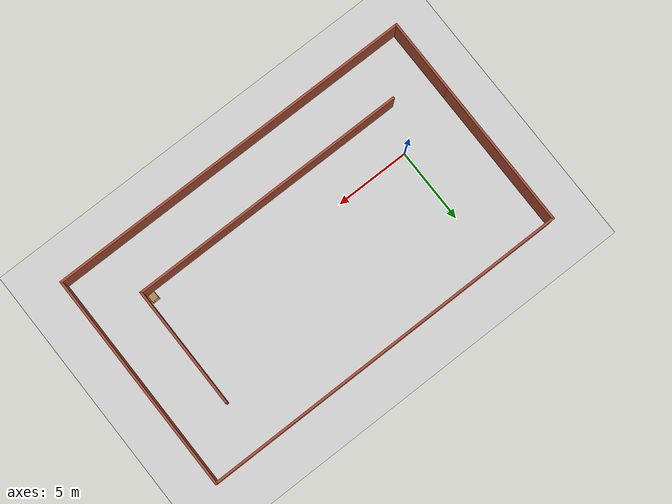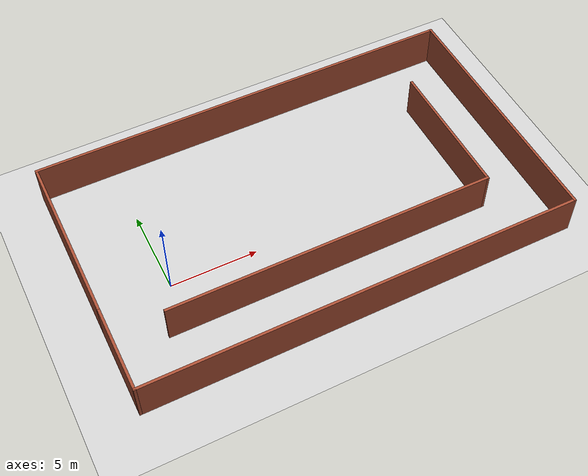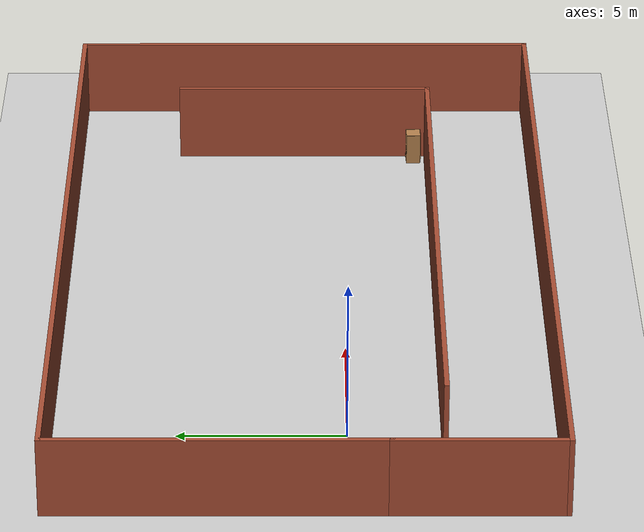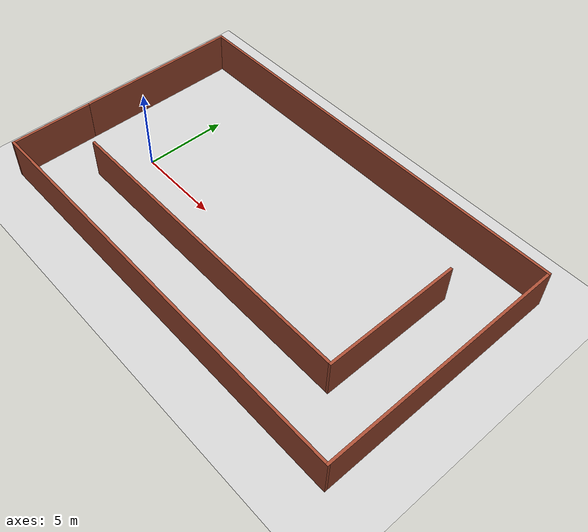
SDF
<sdf version="1.7">
 <world name="default">
  <light name="sun" type="directional">
   <pose>0 0 10 0 -0 0</pose>
   <diffuse>0.8 0.8 0.8 1</diffuse>
   <specular>0.2 0.2 0.2 1</specular>
   <attenuation>
    <range>1000</range>
    <constant>0.9</constant>
    <linear>0.01</linear>
    <quadratic>0.001</quadratic>
   </attenuation>
   <direction>-0.5 0.1 -0.9</direction>
   <spot><inner_angle>0</inner_angle><outer_angle>0</outer_angle><falloff>0</falloff></spot>
  </light>
  <model name="ground_plane">
   <static>1</static>
   <link name="link">
    <collision name="collision">
     <geometry><plane><normal>0 0 1</normal><size>100 100</size></plane></geometry>
     <surface><friction><ode><mu>100</mu><mu2>50</mu2></ode></friction></surface>
    </collision>
    <visual name="visual">
     <cast_shadows>0</cast_shadows>
     <geometry><plane><normal>0 0 1</normal><size>100 100</size></plane></geometry>
     <material>
      <script><uri>file://media/materials/scripts/gazebo.material</uri><name>Gazebo/Grey</name></script>
     </material>
    </visual>
   </link>
  </model>
  <gravity>0 0 -9.8</gravity>
  <magnetic_field>6e-06 2.3e-05 -4.2e-05</magnetic_field>
  <atmosphere type="adiabatic"/>
  <physics type="ode">
   <max_step_size>0.001</max_step_size>
   <real_time_factor>1</real_time_factor>
   <real_time_update_rate>1000</real_time_update_rate>
  </physics>
  <scene><ambient>0.4 0.4 0.4 1</ambient><background>0.7 0.7 0.7 1</background><shadows>1</shadows></scene>
  <spherical_coordinates>
   <surface_model>EARTH_WGS84</surface_model>
   <latitude_deg>0</latitude_deg>
   <longitude_deg>0</longitude_deg>
   <elevation>0</elevation>
   <heading_deg>0</heading_deg>
  </spherical_coordinates>
  <model name="wall">
   <pose>8.42535 1.23338 0 0 -0 0</pose>
   <link name="Wall_0">
    <collision name="Wall_0_Collision">
     <geometry><box><size>10 0.15 2.5</size></box></geometry>
     <pose>0 0 1.25 0 -0 0</pose>
    </collision>
    <visual name="Wall_0_Visual">
     <pose>0 0 1.25 0 -0 0</pose>
     <geometry><box><size>10 0.15 2.5</size></box></geometry>
     <material>
      <script><uri>file://media/materials/scripts/gazebo.material</uri><name>Gazebo/Bricks</name></script>
      <ambient>1 1 1 1</ambient>
     </material>
     <meta><layer>0</layer></meta>
    </visual>
    <pose>-12.55 2.5 0 0 -0 1.5708</pose>
   </link>
   <link name="Wall_1">
    <collision name="Wall_1_Collision">
     <geometry><box><size>25.25 0.15 2.5</size></box></geometry>
     <pose>0 0 1.25 0 -0 0</pose>
    </collision>
    <visual name="Wall_1_Visual">
     <pose>0 0 1.25 0 -0 0</pose>
     <geometry><box><size>25.25 0.15 2.5</size></box></geometry>
     <material>
      <script><uri>file://media/materials/scripts/gazebo.material</uri><name>Gazebo/Bricks</name></script>
      <ambient>1 1 1 1</ambient>
     </material>
     <meta><layer>0</layer></meta>
    </visual>
    <pose>0 7.425 0 0 -0 0</pose>
   </link>
   <link name="Wall_10">
    <collision name="Wall_10_Collision">
     <geometry><box><size>19 0.15 2.5</size></box></geometry>
     <pose>0 0 1.25 0 -0 0</pose>
    </collision>
    <visual name="Wall_10_Visual">
     <pose>0 0 1.25 0 -0 0</pose>
     <geometry><box><size>19 0.15 2.5</size></box></geometry>
     <material>
      <script><uri>file://media/materials/scripts/gazebo.material</uri><name>Gazebo/Bricks</name></script>
      <ambient>1 1 1 1</ambient>
     </material>
     <meta><layer>0</layer></meta>
    </visual>
    <pose>-0.192439 -4.04257 0 0 -0 0</pose>
   </link>
   <link name="Wall_11">
    <collision name="Wall_11_Collision">
     <geometry><box><size>8.25 0.15 2.5</size></box></geometry>
     <pose>0 0 1.25 0 -0 0</pose>
    </collision>
    <visual name="Wall_11_Visual">
     <pose>0 0 1.25 0 -0 0</pose>
     <geometry><box><size>8.25 0.15 2.5</size></box></geometry>
     <material>
      <script><uri>file://media/materials/scripts/gazebo.material</uri><name>Gazebo/Bricks</name></script>
      <ambient>1 1 1 1</ambient>
     </material>
     <meta><layer>0</layer></meta>
    </visual>
    <pose>9.23256 0.007427 0 0 -0 1.5708</pose>
   </link>
   <link name="Wall_2">
    <collision name="Wall_2_Collision">
     <geometry><box><size>15 0.15 2.5</size></box></geometry>
     <pose>0 0 1.25 0 -0 0</pose>
    </collision>
    <visual name="Wall_2_Visual">
     <pose>0 0 1.25 0 -0 0</pose>
     <geometry><box><size>15 0.15 2.5</size></box></geometry>
     <material>
      <script><uri>file://media/materials/scripts/gazebo.material</uri><name>Gazebo/Bricks</name></script>
      <ambient>1 1 1 1</ambient>
     </material>
     <meta><layer>0</layer></meta>
    </visual>
    <pose>12.55 0 0 0 -0 -1.5708</pose>
   </link>
   <link name="Wall_3">
    <collision name="Wall_3_Collision">
     <geometry><box><size>25.25 0.15 2.5</size></box></geometry>
     <pose>0 0 1.25 0 -0 0</pose>
    </collision>
    <visual name="Wall_3_Visual">
     <pose>0 0 1.25 0 -0 0</pose>
     <geometry><box><size>25.25 0.15 2.5</size></box></geometry>
     <material>
      <script><uri>file://media/materials/scripts/gazebo.material</uri><name>Gazebo/Bricks</name></script>
      <ambient>1 1 1 1</ambient>
     </material>
     <meta><layer>0</layer></meta>
    </visual>
    <pose>0 -7.425 0 0 -0 3.14159</pose>
   </link>
   <link name="Wall_4">
    <collision name="Wall_4_Collision">
     <geometry><box><size>5.15 0.15 2.5</size></box></geometry>
     <pose>0 0 1.25 0 -0 0</pose>
    </collision>
    <visual name="Wall_4_Visual">
     <pose>0 0 1.25 0 -0 0</pose>
     <geometry><box><size>5.15 0.15 2.5</size></box></geometry>
     <material>
      <script><uri>file://media/materials/scripts/gazebo.material</uri><name>Gazebo/Bricks</name></script>
      <ambient>1 1 1 1</ambient>
     </material>
     <meta><layer>0</layer></meta>
    </visual>
    <pose>-12.55 -4.925 0 0 -0 1.5708</pose>
   </link>
   <static>1</static>
  </model>
  <model name="cabinet">
   <static>1</static>
   <link name="cabinet_bottom_plate">
    <inertial>
     <pose>0 0 -1 0 -0 0</pose>
     <inertia><ixx>2.05</ixx><ixy>0</ixy><ixz>0</ixz><iyy>2.05</iyy><iyz>0</iyz><izz>2.05</izz></inertia>
     <mass>25</mass>
    </inertial>
    <collision name="cabinet_bottom_plate_geom">
     <pose>0 0 0.01 0 -0 0</pose>
     <geometry><box><size>0.45 0.45 0.02</size></box></geometry>
    </collision>
    <visual name="cabinet_bottom_plate_geom_visual">
     <pose>0 0 0.01 0 -0 0</pose>
     <geometry><box><size>0.45 0.45 0.02</size></box></geometry>
     <material>
      <script><uri>file://media/materials/scripts/gazebo.material</uri><name>Gazebo/Wood</name></script>
     </material>
    </visual>
    <collision name="cabinet_bottom_plate_geom_cabinet_back_plate">
     <pose>0.235 0 0.51 0 -0 0</pose>
     <geometry><box><size>0.02 0.45 1.02</size></box></geometry>
    </collision>
    <visual name="cabinet_bottom_plate_geom_cabinet_back_plate_visual">
     <pose>0.235 0 0.51 0 -0 0</pose>
     <geometry><box><size>0.02 0.45 1.02</size></box></geometry>
     <material>
      <script><uri>file://media/materials/scripts/gazebo.material</uri><name>Gazebo/Wood</name></script>
     </material>
    </visual>
    <collision name="cabinet_bottom_plate_geom_cabinet_left_plate">
     <pose>0 0.235 0.51 0 -0 0</pose>
     <geometry><box><size>0.45 0.02 1.02</size></box></geometry>
    </collision>
    <visual name="cabinet_bottom_plate_geom_cabinet_left_plate_visual">
     <pose>0 0.235 0.51 0 -0 0</pose>
     <geometry><box><size>0.45 0.02 1.02</size></box></geometry>
     <material>
      <script><uri>file://media/materials/scripts/gazebo.material</uri><name>Gazebo/Wood</name></script>
     </material>
    </visual>
    <collision name="cabinet_bottom_plate_geom_cabinet_middle_plate">
     <pose>0 0 0.51 0 -0 0</pose>
     <geometry><box><size>0.45 0.45 0.02</size></box></geometry>
    </collision>
    <visual name="cabinet_bottom_plate_geom_cabinet_middle_plate_visual">
     <pose>0 0 0.51 0 -0 0</pose>
     <geometry><box><size>0.45 0.45 0.02</size></box></geometry>
     <material>
      <script><uri>file://media/materials/scripts/gazebo.material</uri><name>Gazebo/Wood</name></script>
     </material>
    </visual>
    <collision name="cabinet_bottom_plate_geom_cabinet_right_plate">
     <pose>0 -0.235 0.51 0 -0 0</pose>
     <geometry><box><size>0.45 0.02 1.02</size></box></geometry>
    </collision>
    <visual name="cabinet_bottom_plate_geom_cabinet_right_plate_visual">
     <pose>0 -0.235 0.51 0 -0 0</pose>
     <geometry><box><size>0.45 0.02 1.02</size></box></geometry>
     <material>
      <script><uri>file://media/materials/scripts/gazebo.material</uri><name>Gazebo/Wood</name></script>
     </material>
    </visual>
    <collision name="cabinet_bottom_plate_geom_cabinet_top_plate">
     <pose>0 0 1.01 0 -0 0</pose>
     <geometry><box><size>0.45 0.45 0.02</size></box></geometry>
    </collision>
    <visual name="cabinet_bottom_plate_geom_cabinet_top_plate_visual">
     <pose>0 0 1.01 0 -0 0</pose>
     <geometry><box><size>0.45 0.45 0.02</size></box></geometry>
     <material>
      <script><uri>file://media/materials/scripts/gazebo.material</uri><name>Gazebo/Wood</name></script>
     </material>
    </visual>
   </link>
   <pose>17.2719 -2.36067 0.027418 0 0 -1.53385</pose>
  </model>
 </world>
</sdf>
